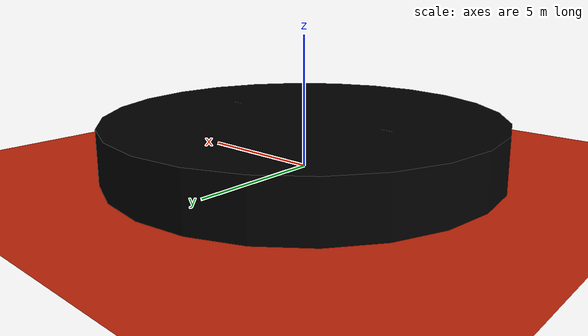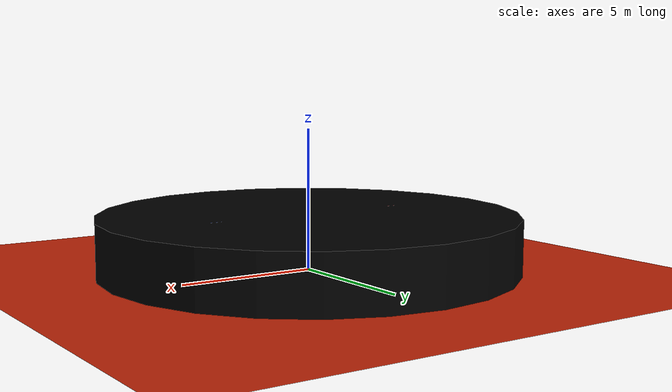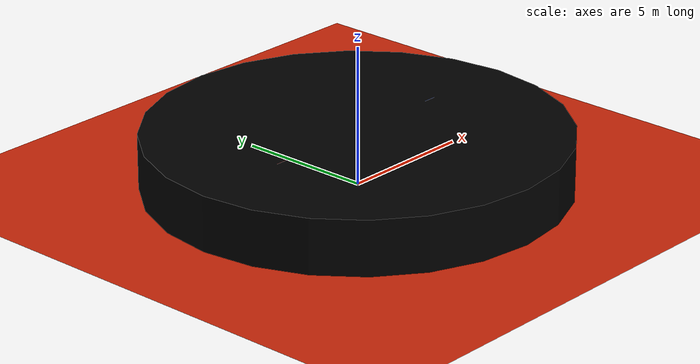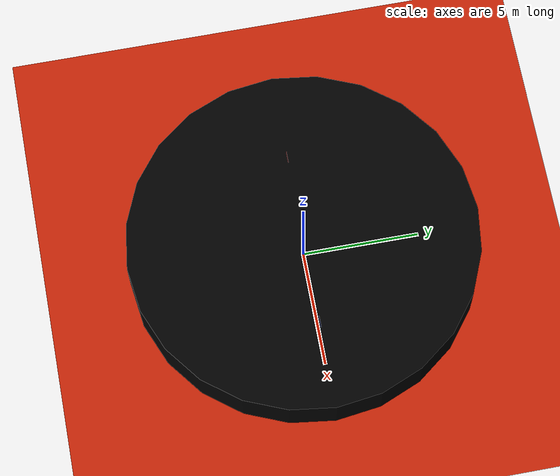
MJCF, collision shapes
<?xml version="1.0" encoding="UTF-8"?>
<mujoco model="sumo_3d_octagon">
  <compiler angle="radian"/>
  <option gravity="0 0 -9.81"/>

  <!-- =============== ASSETS =============== -->
  <asset>
    <!-- Studio cyclorama: white to light gray gradient -->
    <texture name="studio_sky" type="skybox"
             builtin="gradient" width="2048"
             rgb1="1.0 1.0 1.0"
             rgb2="0.95 0.95 0.96"
             mark="none"/>

    <!-- Lava floor (glowing orange/red) -->
    <texture name="studio_floor_tex" type="2d" builtin="checker"
             width="64" height="64"
             rgb1="0.9 0.2 0.05"
             rgb2="0.7 0.1 0.02"/>
    <material name="studio_floor_mat"
              texture="studio_floor_tex"
              texrepeat="4 4"
              texuniform="true"
              specular="0.0"
              shininess="0.0"
              reflectance="0.08"
              emission="0.7"/>

    <!-- Octagonal meshes -->
    <mesh name="octagon_platform_mesh" file="octagon_platform.obj"/>
    <mesh name="octagon_surface_mesh" file="octagon_surface.obj"/>

    <!-- Platform body: neutral dark steel sides -->
    <material name="dohyo_surface"
              rgba="0.22 0.23 0.26 1.0"
              specular="0.3"
              shininess="0.4"
              reflectance="0.05"
              emission="0.06"/>

    <!-- Top surface: premium gold -->
    <material name="dohyo_top"
              rgba="0.72 0.60 0.15 1.0"
              specular="0.35"
              shininess="0.5"
              reflectance="0.12"
              emission="0.0"/>

    <!-- Dohyo boundary marking: muted burnt orange ring -->
    <material name="dohyo_boundary"
              rgba="0.65 0.32 0.08 1.0"
              specular="0.1"
              shininess="0.1"
              reflectance="0"/>

    <!-- Dohyo side bevel: dark steel -->
    <material name="dohyo_bevel"
              rgba="0.20 0.22 0.28 1.0"
              specular="0.2"
              shininess="0.3"
              reflectance="0.02"/>

    <!-- Start position markers -->
    <material name="red_marker"
              rgba="0.85 0.20 0.20 0.8"
              emission="0"/>
    <material name="blue_marker"
              rgba="0.20 0.35 0.85 0.8"
              emission="0"/>
  </asset>

  <!-- =============== VISUALS =============== -->
  <visual>
    <!-- Perspective camera with moderate FOV -->
    <global fovy="45" offwidth="1920" offheight="1080"/>
    <!-- Soft ambient + controlled headlight -->
    <headlight ambient="0.35 0.35 0.35" diffuse="0.15 0.15 0.15" specular="0.05 0.05 0.05"/>
    <!-- Clean depth range -->
    <map fogstart="100" fogend="101" znear="0.01" zfar="100" haze="0"/>
    <!-- Enable shadows for grounding -->
    <quality shadowsize="4096" offsamples="4"/>
  </visual>

  <!-- =============== WORLD =============== -->
  <worldbody>

    <!-- KEY LIGHT: Main directional from above-front -->
    <light name="key_light"
           pos="4 -6 8"
           dir="-0.3 0.5 -1"
           diffuse="0.35 0.35 0.35"
           specular="0.2 0.2 0.2"
           directional="true"
           castshadow="true"/>

    <!-- FILL LIGHTS: Softer ambient fill from sides -->
    <light name="fill_left"
           pos="-8 -4 6"
           dir="0.6 0.3 -0.8"
           diffuse="0.35 0.35 0.35"
           specular="0 0 0"
           directional="true"
           castshadow="false"/>

    <light name="fill_right"
           pos="8 -4 6"
           dir="-0.6 0.3 -0.8"
           diffuse="0.35 0.35 0.35"
           specular="0 0 0"
           directional="true"
           castshadow="false"/>

    <!-- RIM LIGHT: Subtle back separation -->
    <light name="rim_light"
           pos="0 8 5"
           dir="0 -1 -0.5"
           diffuse="0.25 0.25 0.25"
           specular="0.1 0.1 0.1"
           directional="true"
           castshadow="false"/>

    <body name="arena" pos="0 0 0">

      <!-- STUDIO FLOOR: Infinite white epoxy plane with grid -->
      <geom name="outside_floor"
            type="plane"
            pos="0 0 0"
            size="500 500 1"
            material="studio_floor_mat"
            friction="0.005 0.0001 0.0001"
            solref="0.01 1.5"
            solimp="0.9 0.95 0.01"
            contype="1"
            conaffinity="1"/>

      <!-- PHYSICS RING: Invisible cylinder for collision + boundary detection -->
      <geom name="sumo_ring"
            type="cylinder"
            size="7.5 1.0"
            pos="0 0 1.0"
            rgba="0 0 0 0"
            friction="2.00 0.005 0.0001"
            condim="3"
            priority="1"
            solref="0.005 1"
            solimp="0.95 0.99 0.005"
            margin="0.002"
            contype="1"
            conaffinity="1"
            group="3"/>

      <!-- VISUAL: Octagonal platform body (dark steel beveled sides) -->
      <geom name="dohyo_body_visual"
            type="mesh"
            mesh="octagon_platform_mesh"
            pos="0 0 1.0"
            material="dohyo_surface"
            contype="0"
            conaffinity="0"
            group="1"/>

      <!-- VISUAL: Octagonal gold top surface -->
      <geom name="dohyo_top_visual"
            type="mesh"
            mesh="octagon_surface_mesh"
            pos="0 0 2.002"
            material="dohyo_top"
            contype="0"
            conaffinity="0"
            group="1"/>

      <!-- Center mark -->
      <site name="center_mark"
            type="cylinder"
            pos="0 0 2.003"
            size="0.05 0.001"
            rgba="0.35 0.32 0.30 0.3"/>

      <!-- Camera target body (for 3D, target center of ring) -->
      <body name="ring_center" pos="0 0 2.5">
        <geom name="ring_center_marker" type="sphere" size="0.001"
              rgba="0 0 0 0" group="3" contype="0" conaffinity="0"/>
      </body>

      <!-- RED spawn (invisible site for position detection) -->
      <site name="spawn/left"
            pos="-3.75 0 2.3"
            size="0.001"
            rgba="0 0 0 0"
            type="sphere"/>

      <geom name="red_start_line"
            type="box"
            pos="-3.75 0 2.003"
            size="0.25 0.01 0.0005"
            material="red_marker"
            contype="0"
            conaffinity="0"
            group="1"/>

      <!-- BLUE spawn (invisible site for position detection) -->
      <site name="spawn/right"
            pos="3.75 0 2.3"
            size="0.001"
            rgba="0 0 0 0"
            type="sphere"/>

      <geom name="blue_start_line"
            type="box"
            pos="3.75 0 2.003"
            size="0.25 0.01 0.0005"
            material="blue_marker"
            contype="0"
            conaffinity="0"
            group="1"/>

      <!-- Y-axis spawns (perpendicular to X-axis spawns) -->
      <site name="spawn/front"
            pos="0 -3.75 2.3"
            size="0.001"
            rgba="0 0 0 0"
            type="sphere"/>

      <site name="spawn/back"
            pos="0 3.75 2.3"
            size="0.001"
            rgba="0 0 0 0"
            type="sphere"/>

      <!-- CAMERAS optimized for 3D viewing (7.5m radius ring) -->

      <!-- 3/4 perspective -->
      <camera name="side"
              pos="9.0 -13.5 10.5"
              mode="targetbody"
              target="ring_center"
              fovy="50"/>

      <!-- Alternate angle - front quarter view -->
      <camera name="front_quarter"
              pos="12.0 7.5 9.0"
              mode="targetbody"
              target="ring_center"
              fovy="48"/>

      <!-- Dynamic tracking camera -->
      <camera name="tracking"
              pos="0 -12 10.5"
              mode="trackcom"
              fovy="55"/>

      <!-- Top-down for reference -->
      <camera name="topdown"
              pos="0 0 25"
              quat="1 0 0 0"
              mode="trackcom"
              fovy="55"/>

    </body>
  </worldbody>
</mujoco>
